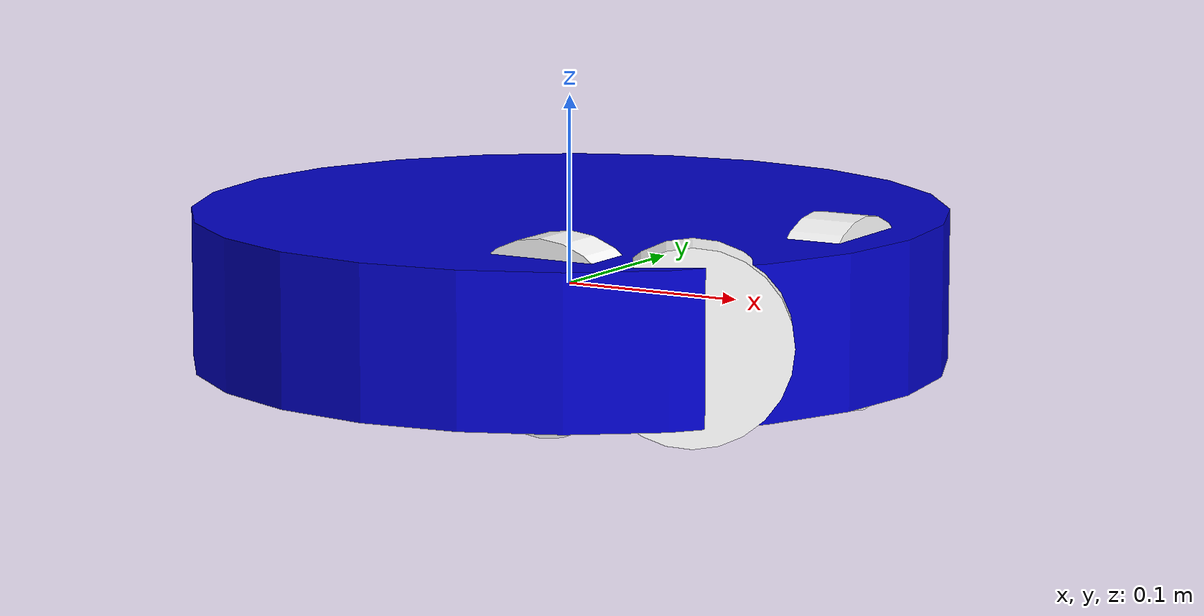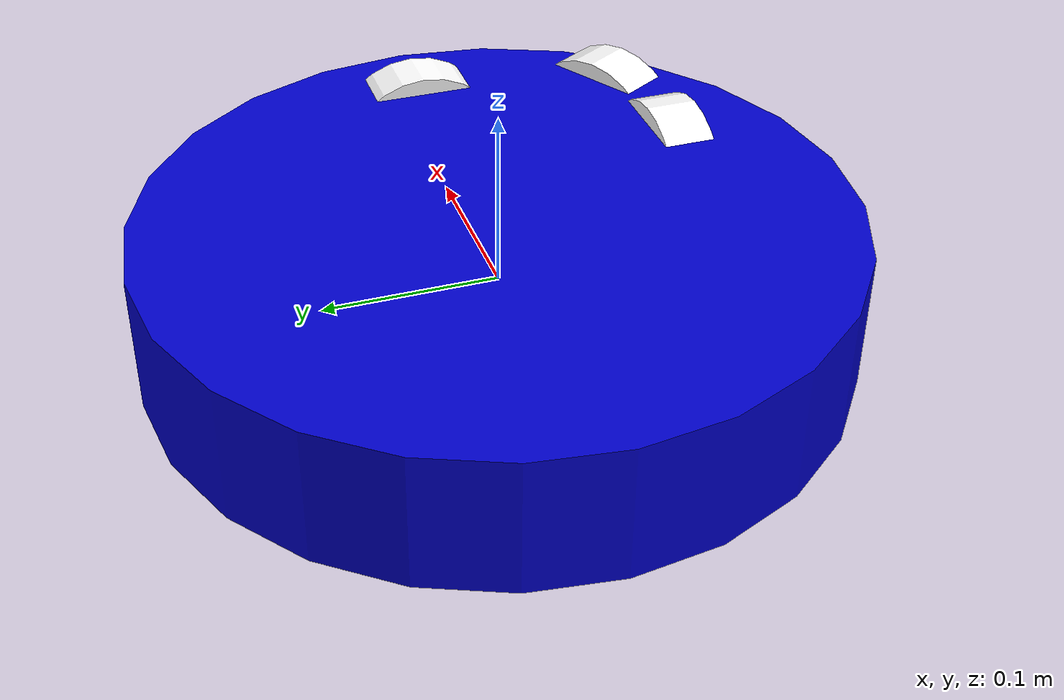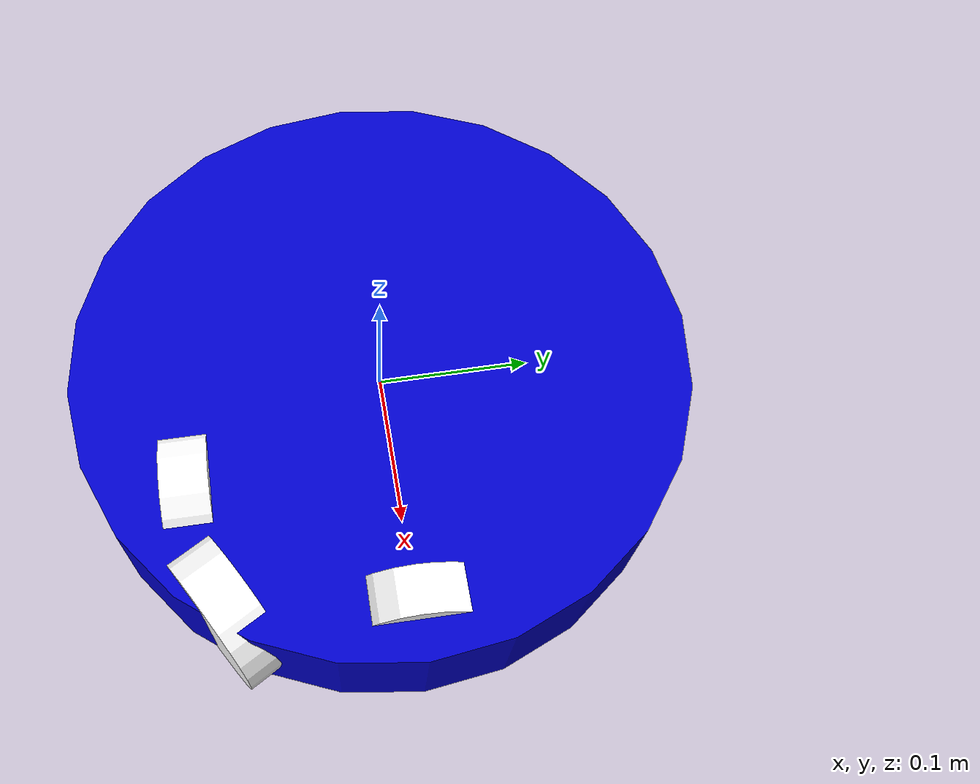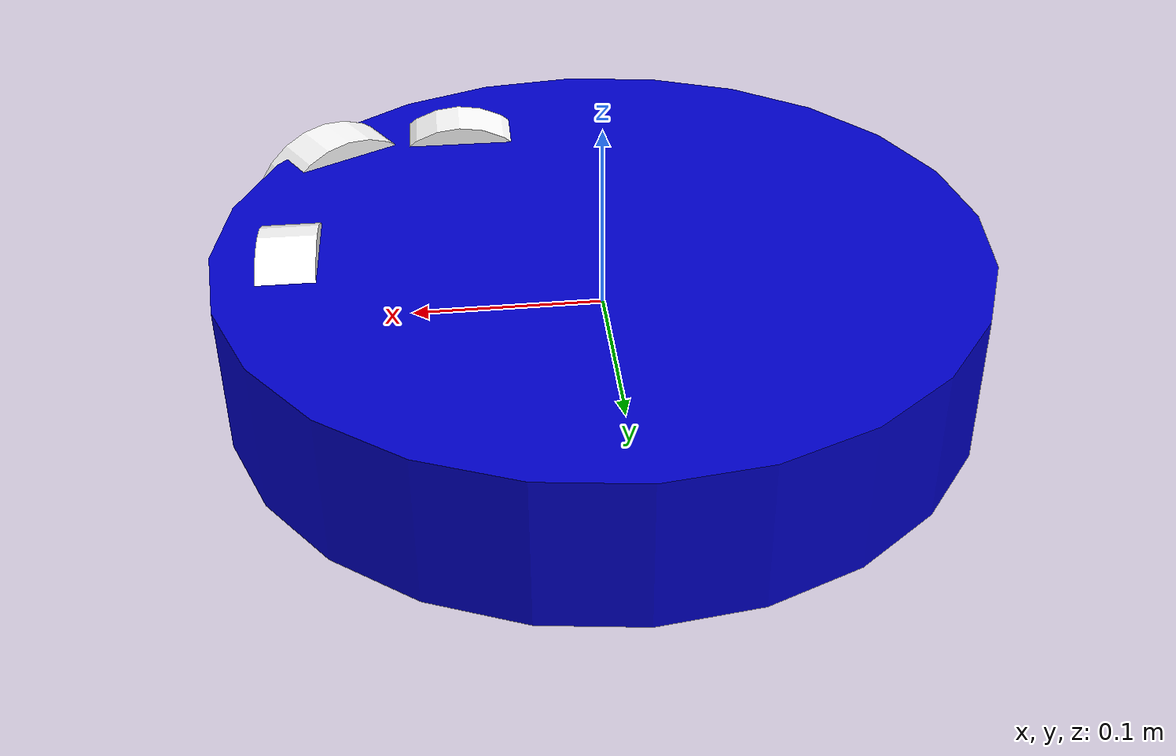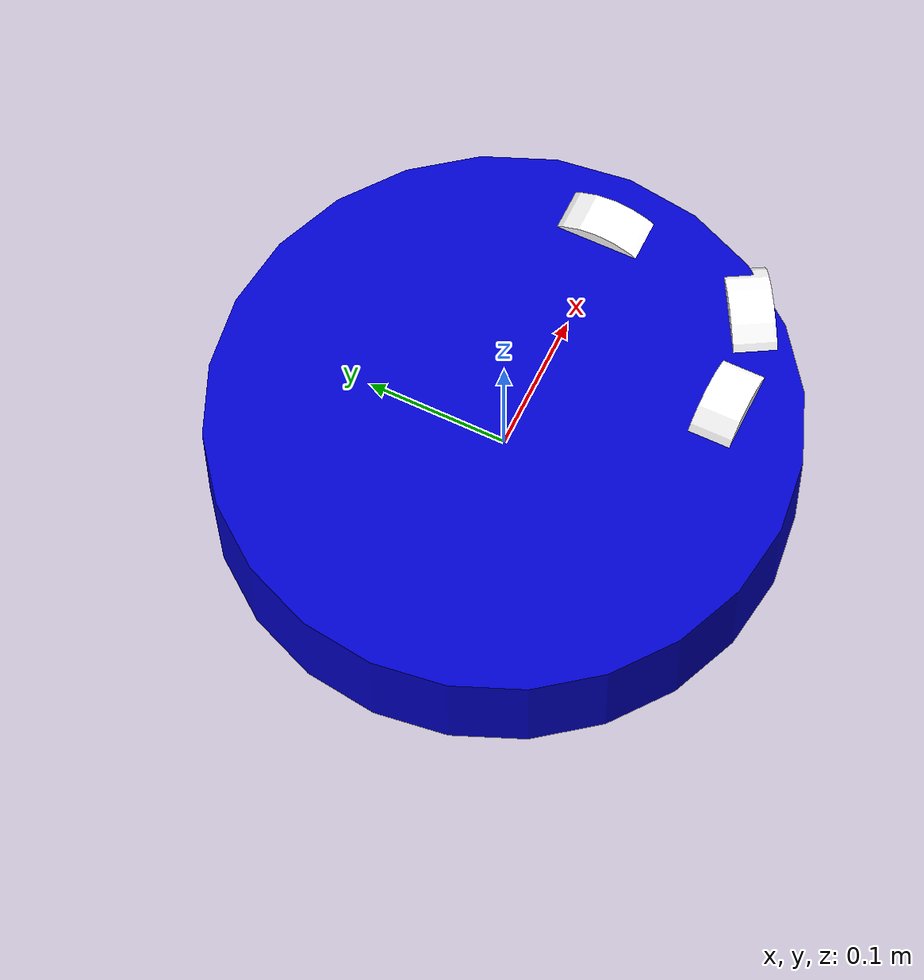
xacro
<?xml version="1.0"?>
<robot xmlns:xacro="http://wiki/xacro" name="daneel">
	<link name="base_link">
		<visual>
			<geometry>
				<cylinder length="0.08" radius="0.2" />
			</geometry>
			<material name="blue">
				<color rgba="0 0 .8 1" />
			</material>
		</visual>
		<collision>
			<geometry>
				<cylinder length="0.1" radius="0.2" />
			</geometry>
		</collision>
		<inertial>
			<mass value="10" />
			<inertia ixx="1.0" ixy="0.0" ixz="0.0" iyy="1.0" iyz="0.0" izz="1.0" />
		</inertial>
	</link>
	<link name="base_footprint">
	</link>
	<joint name="base_joint" type="fixed">
		<parent link="base_link" />
		<child link="base_footprint" />
		<origin xyz="0 0 0" />
	</joint>
	<link name="front_sonar_link">
		<visual>
			<geometry>
				<cylinder length="0.03" radius="0.05" />
			</geometry>
			<origin rpy="0 1.57075 0" xyz="0 0 0" />
			<material name="white">
				<color rgba="1 1 1 1" />
			</material>
		</visual>
		<collision>
			<geometry>
				<cylinder length="0.03" radius="0.05" />
			</geometry>
			<origin rpy="0 1.57075 0" xyz="0 0 0" />
		</collision>
		<inertial>
			<mass value="10" />
			<inertia ixx="1.0" ixy="0.0" ixz="0.0" iyy="1.0" iyz="0.0" izz="1.0" />
		</inertial>
	</link>
	<joint name="front_sonar_joint" type="fixed">
		<parent link="base_link" />
		<child link="front_sonar_link" />
		<origin xyz="0.16 0 0" />
	</joint>
	<link name="right_sonar_link">
		<visual>
			<geometry>
				<cylinder length="0.03" radius="0.05" />
			</geometry>
			<origin rpy="0 1.57075 0" xyz="0 0 0" />
			<material name="white">
				<color rgba="1 1 1 1" />
			</material>
		</visual>
		<collision>
			<geometry>
				<cylinder length="0.05" radius="0.05" />
			</geometry>
			<origin rpy="0 1.57075 0" xyz="0 0 0" />
		</collision>
		<inertial>
			<mass value="10" />
			<inertia ixx="1.0" ixy="0.0" ixz="0.0" iyy="1.0" iyz="0.0" izz="1.0" />
		</inertial>
	</link>
	<joint name="right_sonar_joint" type="fixed">
		<parent link="base_link" />
		<child link="right_sonar_link" />
		<origin xyz="0.07 -0.13 0" rpy="0 0 ${-90*3.1415926/180}" />
	</joint>
	<link name="front_right_sonar_link">
		<visual>
			<geometry>
				<cylinder length="0.03" radius="0.05" />
			</geometry>
			<origin rpy="0 1.57075 0" xyz="0 0 0" />
			<material name="white">
				<color rgba="1 1 1 1" />
			</material>
		</visual>
		<collision>
			<geometry>
				<cylinder length="0.03" radius="0.05" />
			</geometry>
			<origin rpy="0 1.57075 0.52" xyz="0 0 0" />
		</collision>
		<inertial>
			<mass value="10" />
			<inertia ixx="1.0" ixy="0.0" ixz="0.0" iyy="1.0" iyz="0.0" izz="1.0" />
		</inertial>
	</link>
	<joint name="front_right_sonar_joint" type="fixed">
		<parent link="base_link" />
		<child link="front_right_sonar_link" />
		<origin xyz="0.14 -0.11667 0" rpy="0 0 ${-60*3.1415926/180}" />
	</joint>
</robot>
